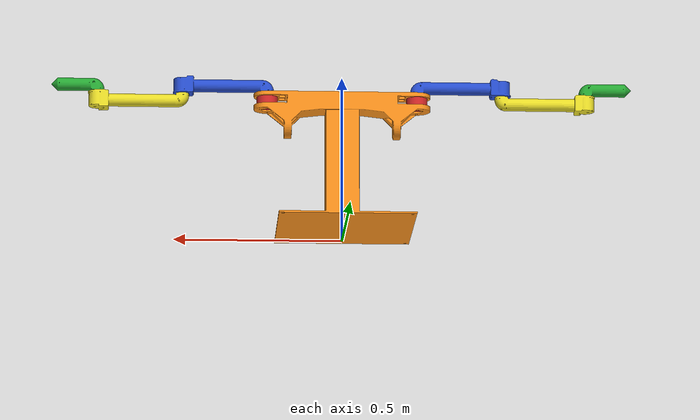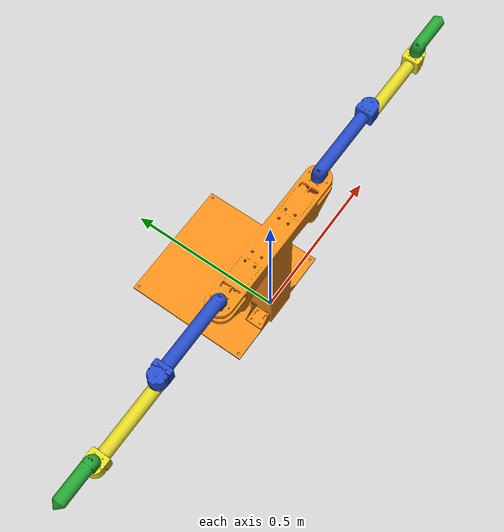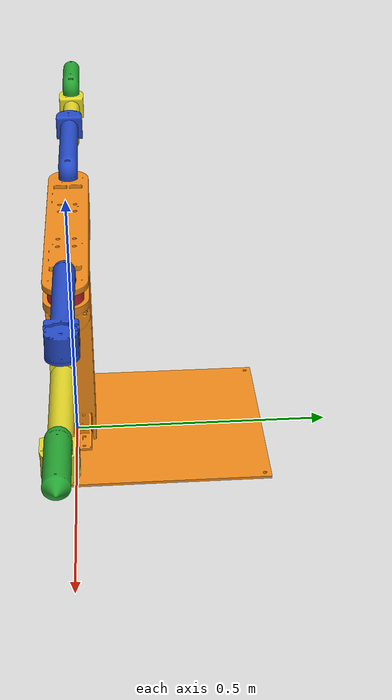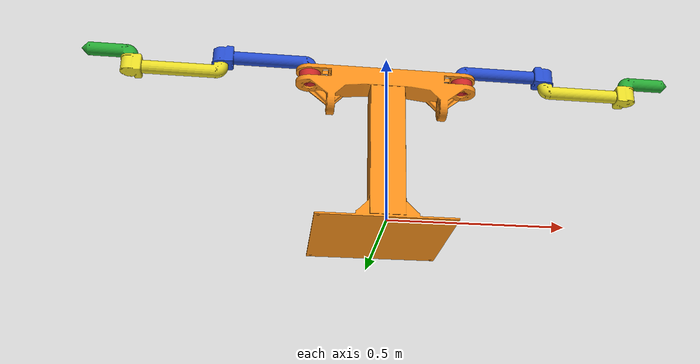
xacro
<?xml version="1.0" encoding="utf-8"?>
<robot name="dual_arm" xmlns:xacro="http://www.ros.org/wiki/xacro">

  <xacro:include filename="gazebo.xacro"/>

  <link name="world"/>

  <link name="link_base">
    <inertial>
      <origin
        xyz="-6.87583756092933E-17 0.040265400208447 0.243667266698083"
        rpy="0 0 0" />
      <mass
        value="3.37108689247961" />
      <inertia
        ixx="0.0237568206662565"
        ixy="8.78039880958513E-10"
        ixz="-9.4942237427685E-19"
        iyy="0.0249894879222251"
        iyz="-4.29674517106707E-18"
        izz="0.0258219973157558" />
    </inertial>

    <visual>
      <origin
        xyz="0 0 0"
        rpy="0 0 0" />
      <geometry>
        <mesh
          filename="file://$(find dual_arm)/meshes/link_base.STL" />
      </geometry>
    </visual>

    <collision>
      <origin
        xyz="0 0 0"
        rpy="0 0 0" />
      <geometry>
        <mesh
          filename="file://$(find dual_arm)/meshes/link_base.STL" />
      </geometry>
    </collision>
  </link>

  <joint name="world_base" type="fixed">
        <parent link="world"/>
        <child link="link_base"/>
        <origin xyz="0 0 0" rpy="0 0 0"/>
  </joint>

  <link name="link_01">
    <inertial>
      <origin
        xyz="-7.9725E-06 1.8305E-06 -0.018327"
        rpy="0 0 0" />
      <mass
        value="0.10237" />
      <inertia
        ixx="3.1248E-05"
        ixy="-3.5816E-09"
        ixz="-4.2872E-08"
        iyy="3.1248E-05"
        iyz="-2.4917E-10"
        izz="5.035E-05" />
    </inertial>

    <visual>
      <origin
        xyz="0 0 0"
        rpy="0 0 0" />
      <geometry>
        <mesh
          filename="file://$(find dual_arm)/meshes/link_01.STL" />
      </geometry>
    </visual>

    <collision>
      <origin
        xyz="0 0 0"
        rpy="0 0 0" />
      <geometry>
        <mesh
          filename="file://$(find dual_arm)/meshes/link_01.STL" />
      </geometry>
    </collision>
  </link>

  <joint name="joint_01" type="fixed">
    <origin
      xyz="-0.224 0 0.4465"
      rpy="0 0 0" />
    <parent
      link="link_base" />
    <child
      link="link_01" />
    <axis
      xyz="0 0 0" />
  </joint>

  <link name="link_11">
    <inertial>
      <origin
        xyz="0.18266 4.0216E-05 0.022592"
        rpy="0 0 0" />
      <mass
        value="0.23333" />
      <inertia
        ixx="7.5902E-05"
        ixy="4.6038E-09"
        ixz="3.0086E-07"
        iyy="0.00020275"
        iyz="8.3576E-09"
        izz="0.00021877" />
    </inertial>

    <visual>
      <origin
        xyz="0 0 0"
        rpy="0 0 0" />
      <geometry>
        <mesh
          filename="file://$(find dual_arm)/meshes/link_11.STL" />
      </geometry>
    </visual>

    <collision>
      <origin
        xyz="0 0 0"
        rpy="0 0 0" />
      <geometry>
        <mesh
          filename="file://$(find dual_arm)/meshes/link_11.STL" />
      </geometry>
    </collision>
  </link>

  <joint name="joint_11" type="revolute">
    <origin
      xyz="0 0 0"
      rpy="0 0 3.1416" />
    <parent
      link="link_01" />
    <child
      link="link_11" />
    <axis
      xyz="0 0 1" />
    <dynamics damping="0.05" friction="0.05"/>
    <limit
      lower="${-pi}"
      upper="${pi}"
      effort="50"
      velocity="${2000*pi}" />
  </joint>

  <link name="link_21">
    <inertial>
      <origin
        xyz="0.18609 -4.7971E-05 -0.022546"
        rpy="0 0 0" />
      <mass
        value="0.22941" />
      <inertia
        ixx="7.4854E-05"
        ixy="-1.1043E-08"
        ixz="-7.4492E-07"
        iyy="0.00020059"
        iyz="-1.9149E-08"
        izz="0.00021668" />
    </inertial>

    <visual>
      <origin
        xyz="0 0 0"
        rpy="0 0 0" />
      <geometry>
        <mesh
          filename="file://$(find dual_arm)/meshes/link_21.STL" />
      </geometry>
    </visual>

    <collision>
      <origin
        xyz="0 0 0"
        rpy="0 0 0" />
      <geometry>
        <mesh
          filename="file://$(find dual_arm)/meshes/link_21.STL" />
      </geometry>
    </collision>
  </link>

  <joint name="joint_21" type="revolute">
    <origin
      xyz="0.253 0 0.005"
      rpy="0 0 0" />
    <parent
      link="link_11" />
    <child
      link="link_21" />
    <axis
      xyz="0 0 -1" />
    <dynamics damping="0.05" friction="0.05"/>
    <limit
      lower="${-pi}"
      upper="${pi}"
      effort="50"
      velocity="${2000*pi}" />
  </joint>

  <link name="link_31">
    <inertial>
      <origin
        xyz="0.051237 -4.4684E-08 0.022159"
        rpy="0 0 0" />
      <mass
        value="0.071538" />
      <inertia
        ixx="1.8609E-05"
        ixy="-1.8853E-11"
        ixz="-3.3532E-06"
        iyy="3.2633E-05"
        iyz="1.0681E-10"
        izz="3.2135E-05" />
    </inertial>

    <visual>
      <origin
        xyz="0 0 0"
        rpy="0 0 0" />
      <geometry>
        <mesh
          filename="file://$(find dual_arm)/meshes/link_31.STL" />
      </geometry>
    </visual>

    <collision>
      <origin
        xyz="0 0 0"
        rpy="0 0 0" />
      <geometry>
        <mesh
          filename="file://$(find dual_arm)/meshes/link_31.STL" />
      </geometry>
    </collision>
  </link>

  <joint name="joint_31" type="revolute">
    <origin
      xyz="0.253 0 -0.005"
      rpy="0 0 0" />
    <parent
      link="link_21" />
    <child
      link="link_31" />
    <axis
      xyz="0 0 1" />
    <dynamics damping="0.2" friction="0.1"/>
    <limit
      lower="${-pi}"
      upper="${pi}"
      effort="50"
      velocity="${2000*pi}" />
  </joint>

  <link name="link_02">
    <inertial>
      <origin
        xyz="-7.9725E-06 1.8305E-06 -0.018327"
        rpy="0 0 0" />
      <mass
        value="0.10237" />
      <inertia
        ixx="3.1248E-05"
        ixy="-3.5816E-09"
        ixz="-4.2872E-08"
        iyy="3.1248E-05"
        iyz="-2.4917E-10"
        izz="5.035E-05" />
    </inertial>

    <visual>
      <origin
        xyz="0 0 0"
        rpy="0 0 0" />
      <geometry>
        <mesh
          filename="file://$(find dual_arm)/meshes/link_02.STL" />
      </geometry>
    </visual>

    <collision>
      <origin
        xyz="0 0 0"
        rpy="0 0 0" />
      <geometry>
        <mesh
          filename="file://$(find dual_arm)/meshes/link_02.STL" />
      </geometry>
    </collision>
  </link>

  <joint name="joint_02" type="fixed">
    <origin
      xyz="0.224 0 0.4465"
      rpy="3.1416 0 3.1416" />
    <parent
      link="link_base" />
    <child
      link="link_02" />
    <axis
      xyz="0 0 0" />
  </joint>

  <link name="link_12">
    <inertial>
      <origin
        xyz="0.182667596045342 -4.72881588468209E-05 -0.0225988551070659"
        rpy="0 0 0" />
      <mass
        value="0.233377610489622" />
      <inertia
        ixx="7.59263925743818E-05"
        ixy="-1.16620649690028E-08"
        ixz="-3.09355014348671E-07"
        iyy="0.000202767767850534"
        iyz="-1.87285850725997E-08"
        izz="0.000218777236926213" />
    </inertial>

    <visual>
      <origin
        xyz="0 0 0"
        rpy="0 0 0" />
      <geometry>
        <mesh
          filename="file://$(find dual_arm)/meshes/link_12.STL" />
      </geometry>
    </visual>

    <collision>
      <origin
        xyz="0 0 0"
        rpy="0 0 0" />
      <geometry>
        <mesh
          filename="file://$(find dual_arm)/meshes/link_12.STL" />
      </geometry>
    </collision>
  </link>

  <joint name="joint_12" type="revolute">
    <origin
      xyz="0 0 0"
      rpy="0 0 3.1416" />
    <parent
      link="link_02" />
    <child
      link="link_12" />
    <axis
      xyz="0 0 -1" />
    <dynamics damping="0.05" friction="0.2"/>
    <limit
      lower="${-pi}"
      upper="${pi}"
      effort="50"
      velocity="${2000*pi}" />
  </joint>

  <link name="link_22">
    <inertial>
      <origin
        xyz="0.186218290804298 0.000107972003132301 0.0226436326674283"
        rpy="0 0 0" />
      <mass
        value="0.229410907821067" />
      <inertia
        ixx="7.58392598686158E-05"
        ixy="7.81972132525871E-08"
        ixz="3.31465856047501E-07"
        iyy="0.000201068720018201"
        iyz="-1.96363315124068E-07"
        izz="0.000216900991543096" />
    </inertial>

    <visual>
      <origin
        xyz="0 0 0"
        rpy="0 0 0" />
      <geometry>
        <mesh
          filename="file://$(find dual_arm)/meshes/link_22.STL" />
      </geometry>
    </visual>

    <collision>
      <origin
        xyz="0 0 0"
        rpy="0 0 0" />
      <geometry>
        <mesh
          filename="file://$(find dual_arm)/meshes/link_22.STL" />
      </geometry>
    </collision>
  </link>

  <joint name="joint_22" type="revolute">
    <origin
      xyz="0.253 0 -0.005"
      rpy="0 0 0" />
    <parent
      link="link_12" />
    <child
      link="link_22" />
    <axis
      xyz="0 0 1" />
    <dynamics damping="0.05" friction="0.2"/>
    <limit
      lower="${-pi}"
      upper="${pi}"
      effort="50"
      velocity="${2000*pi}" />
  </joint>

  <link name="link_32">
    <inertial>
      <origin
        xyz="0.0512365357011292 4.468432696866E-08 -0.0221588884411496"
        rpy="0 0 0" />
      <mass
        value="0.0715379963654706" />
      <inertia
        ixx="1.86091536507067E-05"
        ixy="1.8853040081588E-11"
        ixz="3.35316698201033E-06"
        iyy="3.26333757242948E-05"
        iyz="1.06809801654151E-10"
        izz="3.21346071406916E-05" />
    </inertial>

    <visual>
      <origin
        xyz="0 0 0"
        rpy="0 0 0" />
      <geometry>
        <mesh
          filename="file://$(find dual_arm)/meshes/link_32.STL" />
      </geometry>
    </visual>

    <collision>
      <origin
        xyz="0 0 0"
        rpy="0 0 0" />
      <geometry>
        <mesh
          filename="file://$(find dual_arm)/meshes/link_32.STL" />
      </geometry>
    </collision>
  </link>

  <joint name="joint_32" type="revolute">
    <origin
      xyz="0.253 0 0.005"
      rpy="0 0 0" />
    <parent
      link="link_22" />
    <child
      link="link_32" />
    <axis
      xyz="0 0 -1" />
    <dynamics damping="0.2" friction="0.4"/>
    <limit
      lower="${-pi}"
      upper="${pi}"
      effort="50"
      velocity="${2000*pi}" />
  </joint>

  <transmission name="tran1">
    <type>transmission_interface/SimpleTransmission</type>
    <joint name="joint_11">
      <hardwareInterface>EffortJointInterface</hardwareInterface>
      <hardwareInterface>PositionJointInterface</hardwareInterface>
    </joint>
    <actuator name="m1">
      <mechanicalReduction>1</mechanicalReduction>
    </actuator>
  </transmission>

  <transmission name="tran2">
    <type>transmission_interface/SimpleTransmission</type>
    <joint name="joint_21">
      <hardwareInterface>EffortJointInterface</hardwareInterface>
      <hardwareInterface>PositionJointInterface</hardwareInterface>
    </joint>
    <actuator name="m2">
      <mechanicalReduction>1</mechanicalReduction>
    </actuator>
  </transmission>

  <transmission name="tran3">
    <type>transmission_interface/SimpleTransmission</type>
    <joint name="joint_31">
      <hardwareInterface>EffortJointInterface</hardwareInterface>
      <hardwareInterface>PositionJointInterface</hardwareInterface>
    </joint>
    <actuator name="m3">
      <mechanicalReduction>1</mechanicalReduction>
    </actuator>
  </transmission>

  <transmission name="tran4">
    <type>transmission_interface/SimpleTransmission</type>
    <joint name="joint_12">
      <hardwareInterface>EffortJointInterface</hardwareInterface>
      <hardwareInterface>PositionJointInterface</hardwareInterface>
    </joint>
    <actuator name="m4">
      <mechanicalReduction>1</mechanicalReduction>
    </actuator>
  </transmission>

  <transmission name="tran5">
    <type>transmission_interface/SimpleTransmission</type>
    <joint name="joint_22">
      <hardwareInterface>EffortJointInterface</hardwareInterface>
      <hardwareInterface>PositionJointInterface</hardwareInterface>
    </joint>
    <actuator name="m5">
      <mechanicalReduction>1</mechanicalReduction>
    </actuator>
  </transmission>

  <transmission name="tran6">
    <type>transmission_interface/SimpleTransmission</type>
    <joint name="joint_32">
      <hardwareInterface>EffortJointInterface</hardwareInterface>
      <hardwareInterface>PositionJointInterface</hardwareInterface>
    </joint>
    <actuator name="m6">
      <mechanicalReduction>1</mechanicalReduction>
    </actuator>
  </transmission>

</robot>
